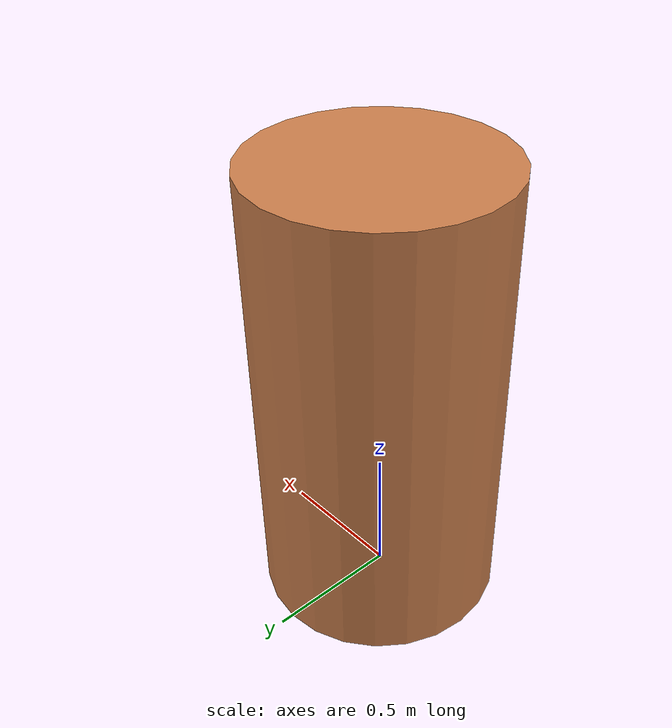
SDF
<?xml version="1.0"?>
<sdf version="1.6">
  <model name="person_scenario">
    <static>true</static>
    <link name="body">
      <collision name="collision">
        <pose>0 0 0.85 0 0 0</pose>
        <geometry><cylinder><radius>0.45</radius><length>1.70</length></cylinder></geometry>
      </collision>
      <visual name="visual">
        <pose>0 0 0.85 0 0 0</pose>
        <geometry><cylinder><radius>0.45</radius><length>1.70</length></cylinder></geometry>
        <material><ambient>0.8 0.5 0.3 1</ambient><diffuse>0.8 0.5 0.3 1</diffuse></material>
      </visual>
    </link>
  </model>
</sdf>
